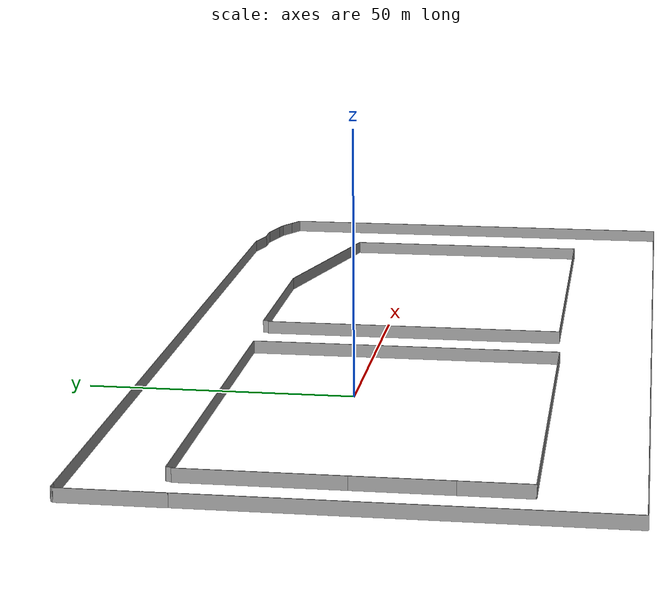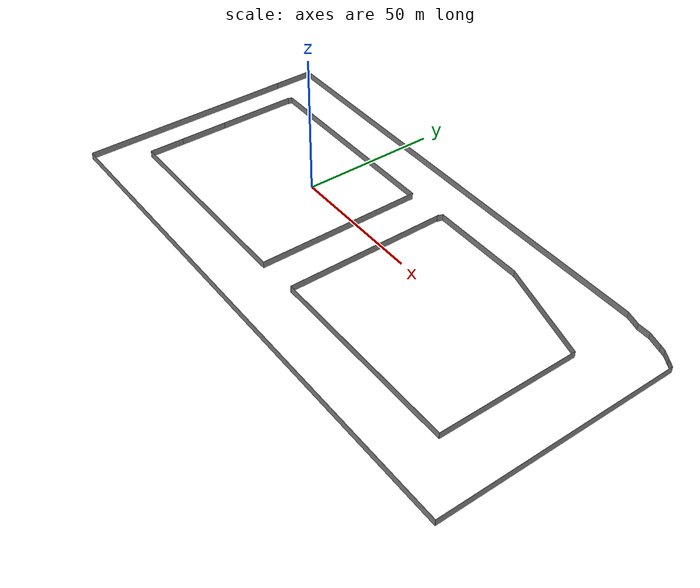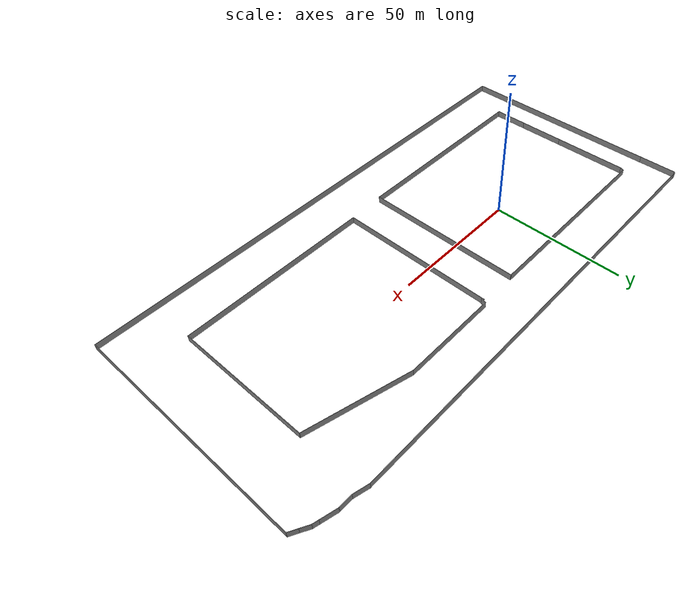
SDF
<?xml version='1.0'?>
<sdf version='1.6'>
  <model name='companywall'>
    <pose frame=''>36.0782 -7.15786 0 0 -0 0</pose>
    <link name='Wall_0'>
      <collision name='Wall_0_Collision'>
        <geometry>
          <box>
            <size>29 0.15 2.5</size>
          </box>
        </geometry>
        <pose frame=''>0 0 1.25 0 -0 0</pose>
      </collision>
      <visual name='Wall_0_Visual'>
        <pose frame=''>0 0 1.25 0 -0 0</pose>
        <geometry>
          <box>
            <size>29 0.15 2.5</size>
          </box>
        </geometry>
        <material>
          <script>
            <uri>file://media/materials/scripts/gazebo.material</uri>
            <name>Gazebo/Grey</name>
          </script>
          <ambient>1 1 1 1</ambient>
        </material>
        <meta>
          <layer>0</layer>
        </meta>
      </visual>
      <pose frame=''>-84.9268 15.5781 0 0 -0 -1.5708</pose>
    </link>
    <link name='Wall_1'>
      <collision name='Wall_1_Collision'>
        <geometry>
          <box>
            <size>17.75 0.15 2.5</size>
          </box>
        </geometry>
        <pose frame=''>0 0 1.25 0 -0 0</pose>
      </collision>
      <visual name='Wall_1_Visual'>
        <pose frame=''>0 0 1.25 0 -0 0</pose>
        <geometry>
          <box>
            <size>17.75 0.15 2.5</size>
          </box>
        </geometry>
        <material>
          <script>
            <uri>file://media/materials/scripts/gazebo.material</uri>
            <name>Gazebo/Grey</name>
          </script>
          <ambient>1 1 1 1</ambient>
        </material>
        <meta>
          <layer>0</layer>
        </meta>
      </visual>
      <pose frame=''>-84.9268 -7.64687 0 0 -0 -1.5708</pose>
    </link>
    <link name='Wall_10'>
      <collision name='Wall_10_Collision'>
        <geometry>
          <box>
            <size>51 0.15 2.5</size>
          </box>
        </geometry>
        <pose frame=''>0 0 1.25 0 -0 0</pose>
      </collision>
      <visual name='Wall_10_Visual'>
        <pose frame=''>0 0 1.25 0 -0 0</pose>
        <geometry>
          <box>
            <size>51 0.15 2.5</size>
          </box>
        </geometry>
        <material>
          <script>
            <uri>file://media/materials/scripts/gazebo.material</uri>
            <name>Gazebo/Grey</name>
          </script>
          <ambient>1 1 1 1</ambient>
        </material>
        <meta>
          <layer>0</layer>
        </meta>
      </visual>
      <pose frame=''>75.708 -3.11663 0 0 -0 1.5708</pose>
    </link>
    <link name='Wall_11'>
      <collision name='Wall_11_Collision'>
        <geometry>
          <box>
            <size>37.5 0.15 2.5</size>
          </box>
        </geometry>
        <pose frame=''>0 0 1.25 0 -0 0</pose>
      </collision>
      <visual name='Wall_11_Visual'>
        <pose frame=''>0 0 1.25 0 -0 0</pose>
        <geometry>
          <box>
            <size>37.5 0.15 2.5</size>
          </box>
        </geometry>
        <material>
          <script>
            <uri>file://media/materials/scripts/gazebo.material</uri>
            <name>Gazebo/Grey</name>
          </script>
          <ambient>1 1 1 1</ambient>
        </material>
        <meta>
          <layer>0</layer>
        </meta>
      </visual>
      <pose frame=''>57.6694 27.1418 0 0 -0 2.87979</pose>
    </link>
    <link name='Wall_12'>
      <collision name='Wall_12_Collision'>
        <geometry>
          <box>
            <size>35 0.15 2.5</size>
          </box>
        </geometry>
        <pose frame=''>0 0 1.25 0 -0 0</pose>
      </collision>
      <visual name='Wall_12_Visual'>
        <pose frame=''>0 0 1.25 0 -0 0</pose>
        <geometry>
          <box>
            <size>35 0.15 2.5</size>
          </box>
        </geometry>
        <material>
          <script>
            <uri>file://media/materials/scripts/gazebo.material</uri>
            <name>Gazebo/Grey</name>
          </script>
          <ambient>1 1 1 1</ambient>
        </material>
        <meta>
          <layer>0</layer>
        </meta>
      </visual>
      <pose frame=''>22.2057 31.9753 0 0 -0 3.14159</pose>
    </link>
    <link name='Wall_13'>
      <collision name='Wall_13_Collision'>
        <geometry>
          <box>
            <size>2.25 0.15 2.5</size>
          </box>
        </geometry>
        <pose frame=''>0 0 1.25 0 -0 0</pose>
      </collision>
      <visual name='Wall_13_Visual'>
        <pose frame=''>0 0 1.25 0 -0 0</pose>
        <geometry>
          <box>
            <size>2.25 0.15 2.5</size>
          </box>
        </geometry>
        <material>
          <script>
            <uri>file://media/materials/scripts/gazebo.material</uri>
            <name>Gazebo/Grey</name>
          </script>
          <ambient>1 1 1 1</ambient>
        </material>
        <meta>
          <layer>0</layer>
        </meta>
      </visual>
      <pose frame=''>4.50894 30.961 0 0 -0 -1.8326</pose>
    </link>
    <link name='Wall_15'>
      <collision name='Wall_15_Collision'>
        <geometry>
          <box>
            <size>79.25 0.15 2.5</size>
          </box>
        </geometry>
        <pose frame=''>0 0 1.25 0 -0 0</pose>
      </collision>
      <visual name='Wall_15_Visual'>
        <pose frame=''>0 0 1.25 0 -0 0</pose>
        <geometry>
          <box>
            <size>79.25 0.15 2.5</size>
          </box>
        </geometry>
        <material>
          <script>
            <uri>file://media/materials/scripts/gazebo.material</uri>
            <name>Gazebo/Grey</name>
          </script>
          <ambient>1 1 1 1</ambient>
        </material>
        <meta>
          <layer>0</layer>
        </meta>
      </visual>
      <pose frame=''>-96.2655 -7.44183 0 0 -0 -1.5708</pose>
    </link>
    <link name='Wall_16'>
      <collision name='Wall_16_Collision'>
        <geometry>
          <box>
            <size>192.75 0.15 2.5</size>
          </box>
        </geometry>
        <pose frame=''>0 0 1.25 0 -0 0</pose>
      </collision>
      <visual name='Wall_16_Visual'>
        <pose frame=''>0 0 1.25 0 -0 0</pose>
        <geometry>
          <box>
            <size>192.75 0.15 2.5</size>
          </box>
        </geometry>
        <material>
          <script>
            <uri>file://media/materials/scripts/gazebo.material</uri>
            <name>Gazebo/Grey</name>
          </script>
          <ambient>1 1 1 1</ambient>
        </material>
        <meta>
          <layer>0</layer>
        </meta>
      </visual>
      <pose frame=''>0.03454 -46.9918 0 0 -0 0</pose>
    </link>
    <link name='Wall_17'>
      <collision name='Wall_17_Collision'>
        <geometry>
          <box>
            <size>87.5 0.15 2.5</size>
          </box>
        </geometry>
        <pose frame=''>0 0 1.25 0 -0 0</pose>
      </collision>
      <visual name='Wall_17_Visual'>
        <pose frame=''>0 0 1.25 0 -0 0</pose>
        <geometry>
          <box>
            <size>87.5 0.15 2.5</size>
          </box>
        </geometry>
        <material>
          <script>
            <uri>file://media/materials/scripts/gazebo.material</uri>
            <name>Gazebo/Grey</name>
          </script>
          <ambient>1 1 1 1</ambient>
        </material>
        <meta>
          <layer>0</layer>
        </meta>
      </visual>
      <pose frame=''>96.3345 -3.31683 0 0 -0 1.5708</pose>
    </link>
    <link name='Wall_18'>
      <collision name='Wall_18_Collision'>
        <geometry>
          <box>
            <size>3.25 0.15 2.5</size>
          </box>
        </geometry>
        <pose frame=''>0 0 1.25 0 -0 0</pose>
      </collision>
      <visual name='Wall_18_Visual'>
        <pose frame=''>0 0 1.25 0 -0 0</pose>
        <geometry>
          <box>
            <size>3.25 0.15 2.5</size>
          </box>
        </geometry>
        <material>
          <script>
            <uri>file://media/materials/scripts/gazebo.material</uri>
            <name>Gazebo/Grey</name>
          </script>
          <ambient>1 1 1 1</ambient>
        </material>
        <meta>
          <layer>0</layer>
        </meta>
      </visual>
      <pose frame=''>94.9922 41.1332 0 0 -0 2.61799</pose>
    </link>
    <link name='Wall_19'>
      <collision name='Wall_19_Collision'>
        <geometry>
          <box>
            <size>3.5 0.15 2.5</size>
          </box>
        </geometry>
        <pose frame=''>0 0 1.25 0 -0 0</pose>
      </collision>
      <visual name='Wall_19_Visual'>
        <pose frame=''>0 0 1.25 0 -0 0</pose>
        <geometry>
          <box>
            <size>3.5 0.15 2.5</size>
          </box>
        </geometry>
        <material>
          <script>
            <uri>file://media/materials/scripts/gazebo.material</uri>
            <name>Gazebo/Grey</name>
          </script>
          <ambient>1 1 1 1</ambient>
        </material>
        <meta>
          <layer>0</layer>
        </meta>
      </visual>
      <pose frame=''>92.1993 42.7457 0 0 -0 2.61799</pose>
    </link>
    <link name='Wall_2'>
      <collision name='Wall_2_Collision'>
        <geometry>
          <box>
            <size>13 0.15 2.5</size>
          </box>
        </geometry>
        <pose frame=''>0 0 1.25 0 -0 0</pose>
      </collision>
      <visual name='Wall_2_Visual'>
        <pose frame=''>0 0 1.25 0 -0 0</pose>
        <geometry>
          <box>
            <size>13 0.15 2.5</size>
          </box>
        </geometry>
        <material>
          <script>
            <uri>file://media/materials/scripts/gazebo.material</uri>
            <name>Gazebo/Grey</name>
          </script>
          <ambient>1 1 1 1</ambient>
        </material>
        <meta>
          <layer>0</layer>
        </meta>
      </visual>
      <pose frame=''>-84.9268 -22.8719 0 0 -0 -1.5708</pose>
    </link>
    <link name='Wall_20'>
      <collision name='Wall_20_Collision'>
        <geometry>
          <box>
            <size>2.25 0.15 2.5</size>
          </box>
        </geometry>
        <pose frame=''>0 0 1.25 0 -0 0</pose>
      </collision>
      <visual name='Wall_20_Visual'>
        <pose frame=''>0 0 1.25 0 -0 0</pose>
        <geometry>
          <box>
            <size>2.25 0.15 2.5</size>
          </box>
        </geometry>
        <material>
          <script>
            <uri>file://media/materials/scripts/gazebo.material</uri>
            <name>Gazebo/Grey</name>
          </script>
          <ambient>1 1 1 1</ambient>
        </material>
        <meta>
          <layer>0</layer>
        </meta>
      </visual>
      <pose frame=''>89.7345 43.8549 0 0 -0 2.87979</pose>
    </link>
    <link name='Wall_21'>
      <collision name='Wall_21_Collision'>
        <geometry>
          <box>
            <size>5.75 0.15 2.5</size>
          </box>
        </geometry>
        <pose frame=''>0 0 1.25 0 -0 0</pose>
      </collision>
      <visual name='Wall_21_Visual'>
        <pose frame=''>0 0 1.25 0 -0 0</pose>
        <geometry>
          <box>
            <size>5.75 0.15 2.5</size>
          </box>
        </geometry>
        <material>
          <script>
            <uri>file://media/materials/scripts/gazebo.material</uri>
            <name>Gazebo/Grey</name>
          </script>
          <ambient>1 1 1 1</ambient>
        </material>
        <meta>
          <layer>0</layer>
        </meta>
      </visual>
      <pose frame=''>86.0156 44.8514 0 0 -0 2.87979</pose>
    </link>
    <link name='Wall_22'>
      <collision name='Wall_22_Collision'>
        <geometry>
          <box>
            <size>4.75 0.15 2.5</size>
          </box>
        </geometry>
        <pose frame=''>0 0 1.25 0 -0 0</pose>
      </collision>
      <visual name='Wall_22_Visual'>
        <pose frame=''>0 0 1.25 0 -0 0</pose>
        <geometry>
          <box>
            <size>4.75 0.15 2.5</size>
          </box>
        </geometry>
        <material>
          <script>
            <uri>file://media/materials/scripts/gazebo.material</uri>
            <name>Gazebo/Grey</name>
          </script>
          <ambient>1 1 1 1</ambient>
        </material>
        <meta>
          <layer>0</layer>
        </meta>
      </visual>
      <pose frame=''>81.011 45.5761 0 0 -0 3.14159</pose>
    </link>
    <link name='Wall_23'>
      <collision name='Wall_23_Collision'>
        <geometry>
          <box>
            <size>5.5 0.15 2.5</size>
          </box>
        </geometry>
        <pose frame=''>0 0 1.25 0 -0 0</pose>
      </collision>
      <visual name='Wall_23_Visual'>
        <pose frame=''>0 0 1.25 0 -0 0</pose>
        <geometry>
          <box>
            <size>5.5 0.15 2.5</size>
          </box>
        </geometry>
        <material>
          <script>
            <uri>file://media/materials/scripts/gazebo.material</uri>
            <name>Gazebo/Grey</name>
          </script>
          <ambient>1 1 1 1</ambient>
        </material>
        <meta>
          <layer>0</layer>
        </meta>
      </visual>
      <pose frame=''>76.1272 46.2684 0 0 -0 2.87979</pose>
    </link>
    <link name='Wall_24'>
      <collision name='Wall_24_Collision'>
        <geometry>
          <box>
            <size>168.25 0.15 2.5</size>
          </box>
        </geometry>
        <pose frame=''>0 0 1.25 0 -0 0</pose>
      </collision>
      <visual name='Wall_24_Visual'>
        <pose frame=''>0 0 1.25 0 -0 0</pose>
        <geometry>
          <box>
            <size>168.25 0.15 2.5</size>
          </box>
        </geometry>
        <material>
          <script>
            <uri>file://media/materials/scripts/gazebo.material</uri>
            <name>Gazebo/Grey</name>
          </script>
          <ambient>1 1 1 1</ambient>
        </material>
        <meta>
          <layer>0</layer>
        </meta>
      </visual>
      <pose frame=''>-10.5067 46.9608 0 0 -0 3.14159</pose>
    </link>
    <link name='Wall_25'>
      <collision name='Wall_25_Collision'>
        <geometry>
          <box>
            <size>1.5 0.15 2.5</size>
          </box>
        </geometry>
        <pose frame=''>0 0 1.25 0 -0 0</pose>
      </collision>
      <visual name='Wall_25_Visual'>
        <pose frame=''>0 0 1.25 0 -0 0</pose>
        <geometry>
          <box>
            <size>1.5 0.15 2.5</size>
          </box>
        </geometry>
        <material>
          <script>
            <uri>file://media/materials/scripts/gazebo.material</uri>
            <name>Gazebo/Grey</name>
          </script>
          <ambient>1 1 1 1</ambient>
        </material>
        <meta>
          <layer>0</layer>
        </meta>
      </visual>
      <pose frame=''>-95.2317 46.9608 0 0 -0 3.14159</pose>
    </link>
    <link name='Wall_26'>
      <collision name='Wall_26_Collision'>
        <geometry>
          <box>
            <size>0.75 0.15 2.5</size>
          </box>
        </geometry>
        <pose frame=''>0 0 1.25 0 -0 0</pose>
      </collision>
      <visual name='Wall_26_Visual'>
        <pose frame=''>0 0 1.25 0 -0 0</pose>
        <geometry>
          <box>
            <size>0.75 0.15 2.5</size>
          </box>
        </geometry>
        <material>
          <script>
            <uri>file://media/materials/scripts/gazebo.material</uri>
            <name>Gazebo/Grey</name>
          </script>
          <ambient>1 1 1 1</ambient>
        </material>
        <meta>
          <layer>0</layer>
        </meta>
      </visual>
      <pose frame=''>-96.1188 46.7486 0 0 -0 -2.35619</pose>
    </link>
    <link name='Wall_27'>
      <collision name='Wall_27_Collision'>
        <geometry>
          <box>
            <size>18.75 0.15 2.5</size>
          </box>
        </geometry>
        <pose frame=''>0 0 1.25 0 -0 0</pose>
      </collision>
      <visual name='Wall_27_Visual'>
        <pose frame=''>0 0 1.25 0 -0 0</pose>
        <geometry>
          <box>
            <size>18.75 0.15 2.5</size>
          </box>
        </geometry>
        <material>
          <script>
            <uri>file://media/materials/scripts/gazebo.material</uri>
            <name>Gazebo/Grey</name>
          </script>
          <ambient>1 1 1 1</ambient>
        </material>
        <meta>
          <layer>0</layer>
        </meta>
      </visual>
      <pose frame=''>-96.3309 37.2365 0 0 -0 -1.5708</pose>
    </link>
    <link name='Wall_3'>
      <collision name='Wall_3_Collision'>
        <geometry>
          <box>
            <size>74.75 0.15 2.5</size>
          </box>
        </geometry>
        <pose frame=''>0 0 1.25 0 -0 0</pose>
      </collision>
      <visual name='Wall_3_Visual'>
        <pose frame=''>0 0 1.25 0 -0 0</pose>
        <geometry>
          <box>
            <size>74.75 0.15 2.5</size>
          </box>
        </geometry>
        <material>
          <script>
            <uri>file://media/materials/scripts/gazebo.material</uri>
            <name>Gazebo/Grey</name>
          </script>
          <ambient>1 1 1 1</ambient>
        </material>
        <meta>
          <layer>0</layer>
        </meta>
      </visual>
      <pose frame=''>-47.6268 -29.2969 0 0 -0 0</pose>
    </link>
    <link name='Wall_4'>
      <collision name='Wall_4_Collision'>
        <geometry>
          <box>
            <size>60.5 0.15 2.5</size>
          </box>
        </geometry>
        <pose frame=''>0 0 1.25 0 -0 0</pose>
      </collision>
      <visual name='Wall_4_Visual'>
        <pose frame=''>0 0 1.25 0 -0 0</pose>
        <geometry>
          <box>
            <size>60.5 0.15 2.5</size>
          </box>
        </geometry>
        <material>
          <script>
            <uri>file://media/materials/scripts/gazebo.material</uri>
            <name>Gazebo/Grey</name>
          </script>
          <ambient>1 1 1 1</ambient>
        </material>
        <meta>
          <layer>0</layer>
        </meta>
      </visual>
      <pose frame=''>-10.3268 0.878135 0 0 -0 1.5708</pose>
    </link>
    <link name='Wall_5'>
      <collision name='Wall_5_Collision'>
        <geometry>
          <box>
            <size>74.25 0.15 2.5</size>
          </box>
        </geometry>
        <pose frame=''>0 0 1.25 0 -0 0</pose>
      </collision>
      <visual name='Wall_5_Visual'>
        <pose frame=''>0 0 1.25 0 -0 0</pose>
        <geometry>
          <box>
            <size>74.25 0.15 2.5</size>
          </box>
        </geometry>
        <material>
          <script>
            <uri>file://media/materials/scripts/gazebo.material</uri>
            <name>Gazebo/Grey</name>
          </script>
          <ambient>1 1 1 1</ambient>
        </material>
        <meta>
          <layer>0</layer>
        </meta>
      </visual>
      <pose frame=''>-47.3768 31.0531 0 0 -0 3.14159</pose>
    </link>
    <link name='Wall_6'>
      <collision name='Wall_6_Collision'>
        <geometry>
          <box>
            <size>1.5 0.15 2.5</size>
          </box>
        </geometry>
        <pose frame=''>0 0 1.25 0 -0 0</pose>
      </collision>
      <visual name='Wall_6_Visual'>
        <pose frame=''>0 0 1.25 0 -0 0</pose>
        <geometry>
          <box>
            <size>1.5 0.15 2.5</size>
          </box>
        </geometry>
        <material>
          <script>
            <uri>file://media/materials/scripts/gazebo.material</uri>
            <name>Gazebo/Grey</name>
          </script>
          <ambient>1 1 1 1</ambient>
        </material>
        <meta>
          <layer>0</layer>
        </meta>
      </visual>
      <pose frame=''>-84.6015 30.4011 0 0 -0 -1.8326</pose>
    </link>
    <link name='Wall_8'>
      <collision name='Wall_8_Collision'>
        <geometry>
          <box>
            <size>59.5 0.15 2.5</size>
          </box>
        </geometry>
        <pose frame=''>0 0 1.25 0 -0 0</pose>
      </collision>
      <visual name='Wall_8_Visual'>
        <pose frame=''>0 0 1.25 0 -0 0</pose>
        <geometry>
          <box>
            <size>59.5 0.15 2.5</size>
          </box>
        </geometry>
        <material>
          <script>
            <uri>file://media/materials/scripts/gazebo.material</uri>
            <name>Gazebo/Grey</name>
          </script>
          <ambient>1 1 1 1</ambient>
        </material>
        <meta>
          <layer>0</layer>
        </meta>
      </visual>
      <pose frame=''>4.10803 1.13337 0 0 -0 -1.5708</pose>
    </link>
    <link name='Wall_9'>
      <collision name='Wall_9_Collision'>
        <geometry>
          <box>
            <size>71.75 0.15 2.5</size>
          </box>
        </geometry>
        <pose frame=''>0 0 1.25 0 -0 0</pose>
      </collision>
      <visual name='Wall_9_Visual'>
        <pose frame=''>0 0 1.25 0 -0 0</pose>
        <geometry>
          <box>
            <size>71.75 0.15 2.5</size>
          </box>
        </geometry>
        <material>
          <script>
            <uri>file://media/materials/scripts/gazebo.material</uri>
            <name>Gazebo/Grey</name>
          </script>
          <ambient>1 1 1 1</ambient>
        </material>
        <meta>
          <layer>0</layer>
        </meta>
      </visual>
      <pose frame=''>39.908 -28.5416 0 0 -0 0</pose>
    </link>
    <static>1</static>
  </model>
</sdf>
